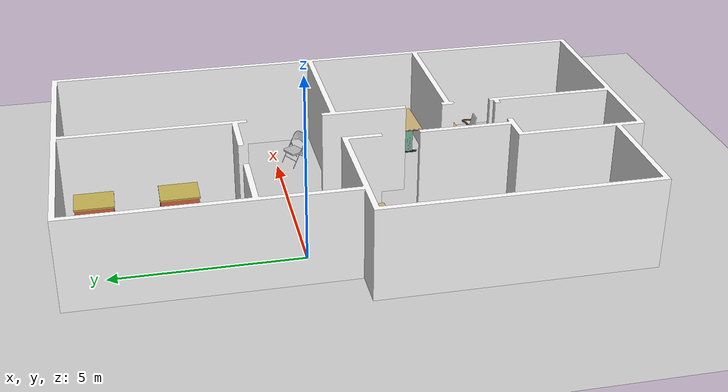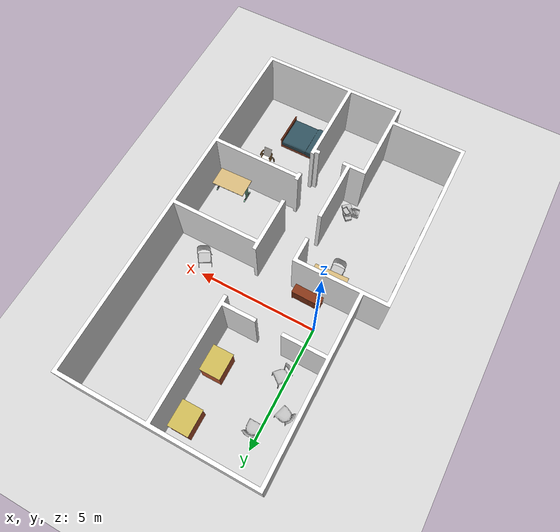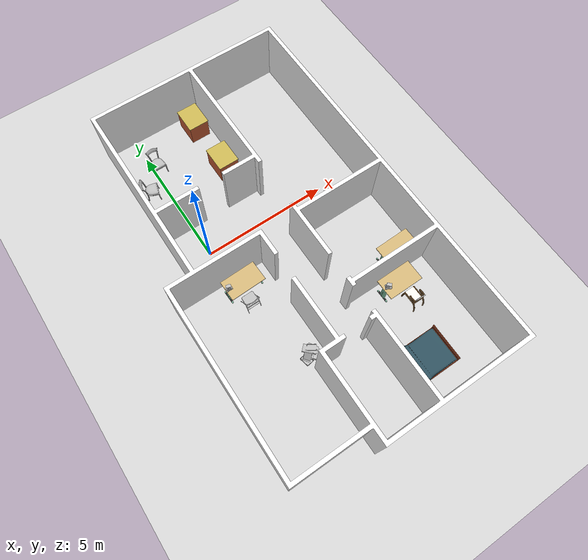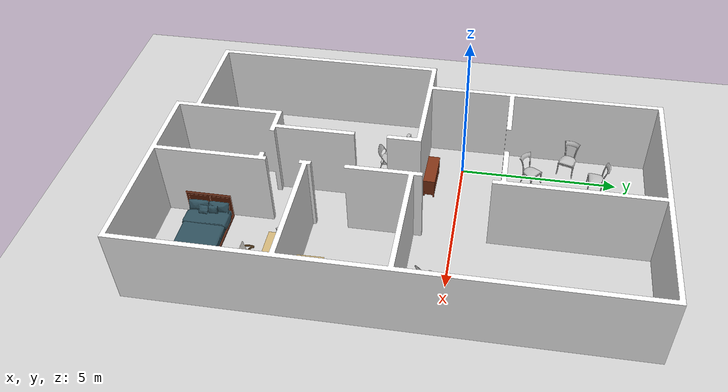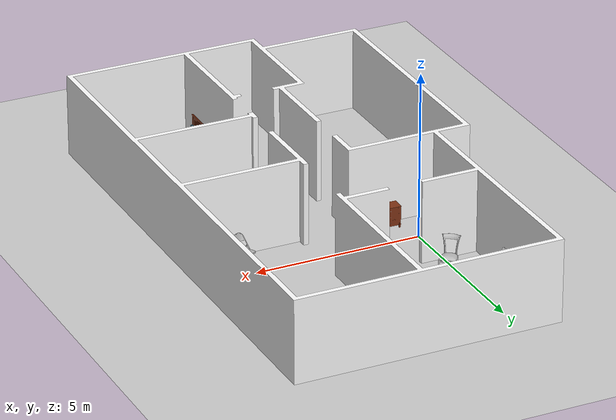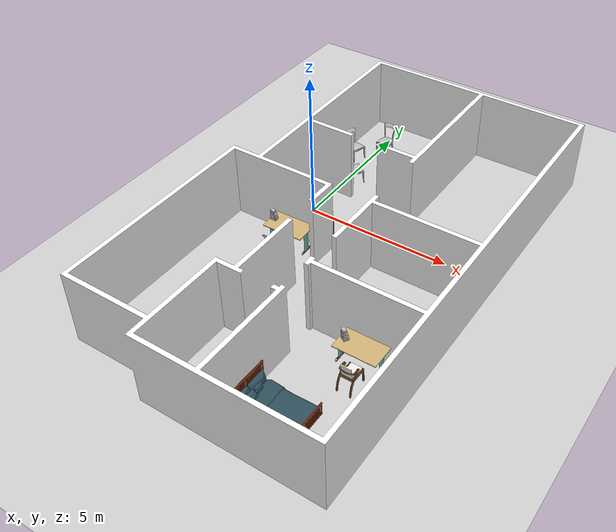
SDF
<sdf version="1.6">
 <world name="default">
  <light name="sun" type="directional">
   <pose>0 0 10 0 -0 0</pose>
   <diffuse>0.8 0.8 0.8 1</diffuse>
   <specular>0.2 0.2 0.2 1</specular>
   <attenuation>
    <range>1000</range>
    <constant>0.9</constant>
    <linear>0.01</linear>
    <quadratic>0.001</quadratic>
   </attenuation>
   <direction>-0.5 0.1 -0.9</direction>
  </light>
  <model name="ground_plane">
   <static>1</static>
   <link name="link">
    <collision name="collision">
     <geometry><plane><normal>0 0 1</normal><size>100 100</size></plane></geometry>
     <surface><friction><ode><mu>100</mu><mu2>50</mu2></ode></friction></surface>
    </collision>
    <visual name="visual">
     <cast_shadows>0</cast_shadows>
     <geometry><plane><normal>0 0 1</normal><size>100 100</size></plane></geometry>
     <material>
      <script><uri>file://media/materials/scripts/gazebo.material</uri><name>Gazebo/Grey</name></script>
     </material>
    </visual>
   </link>
  </model>
  <gravity>0 0 -9.8</gravity>
  <magnetic_field>6e-06 2.3e-05 -4.2e-05</magnetic_field>
  <atmosphere type="adiabatic"/>
  <physics name="default_physics" default="0" type="ode">
   <max_step_size>0.001</max_step_size>
   <real_time_factor>1</real_time_factor>
   <real_time_update_rate>1000</real_time_update_rate>
  </physics>
  <scene><ambient>0.4 0.4 0.4 1</ambient><background>0.7 0.7 0.7 1</background><shadows>1</shadows></scene>
  <spherical_coordinates>
   <surface_model>EARTH_WGS84</surface_model>
   <latitude_deg>0</latitude_deg>
   <longitude_deg>0</longitude_deg>
   <elevation>0</elevation>
   <heading_deg>0</heading_deg>
  </spherical_coordinates>
  <model name="apartment_2">
   <link name="link">
    <collision name="collision">
     <geometry><mesh><uri>model://apartment_2/meshes/walls.dae</uri></mesh></geometry>
    </collision>
    <visual name="visual">
     <geometry><mesh><uri>model://apartment_2/meshes/walls.dae</uri></mesh></geometry>
    </visual>
   </link>
   <static>1</static>
  </model>
  <model name="chair_fancy_1">
   <link name="link">
    <collision name="collision">
     <geometry><mesh><uri>model://chair_fancy_1/meshes/model.dae</uri></mesh></geometry>
    </collision>
    <visual name="visual">
     <geometry><mesh><uri>model://chair_fancy_1/meshes/model.dae</uri></mesh></geometry>
    </visual>
   </link>
   <static>1</static>
   <pose>0.222648 4.36407 0 0 -0 0</pose>
  </model>
  <model name="chair_fancy_1_0">
   <link name="link">
    <collision name="collision">
     <geometry><mesh><uri>model://chair_fancy_1/meshes/model.dae</uri></mesh></geometry>
    </collision>
    <visual name="visual">
     <geometry><mesh><uri>model://chair_fancy_1/meshes/model.dae</uri></mesh></geometry>
    </visual>
   </link>
   <static>1</static>
   <pose>-0.585684 3.42029 0 0 -0 1.27558</pose>
  </model>
  <model name="chair_fancy_1_1">
   <link name="link">
    <collision name="collision">
     <geometry><mesh><uri>model://chair_fancy_1/meshes/model.dae</uri></mesh></geometry>
    </collision>
    <visual name="visual">
     <geometry><mesh><uri>model://chair_fancy_1/meshes/model.dae</uri></mesh></geometry>
    </visual>
   </link>
   <static>1</static>
   <pose>0.180036 2.19131 0 0 -0 2.47671</pose>
  </model>
  <model name="drawer">
   <link name="link">
    <collision name="collision">
     <geometry><mesh><uri>model://drawer/meshes/model.dae</uri></mesh></geometry>
    </collision>
    <visual name="visual"><geometry><mesh><uri>model://drawer/meshes/model.dae</uri></mesh></geometry></visual>
   </link>
   <static>1</static>
   <pose>0.767272 -0.955119 0 0 -0 3.12281</pose>
  </model>
  <model name="chair_foldable">
   <link name="link">
    <collision name="collision">
     <geometry><mesh><uri>model://chair_foldable/meshes/model.dae</uri></mesh></geometry>
    </collision>
    <visual name="visual">
     <geometry><mesh><uri>model://chair_foldable/meshes/model.dae</uri></mesh></geometry>
    </visual>
   </link>
   <static>1</static>
   <pose>5.12868 -0.532836 0 0 0 -2.62752</pose>
  </model>
  <model name="bed_fullsize">
   <link name="link">
    <collision name="collision">
     <geometry><mesh><uri>model://bed_fullsize/meshes/model.dae</uri></mesh></geometry>
    </collision>
    <visual name="visual">
     <geometry><mesh><uri>model://bed_fullsize/meshes/model.dae</uri></mesh></geometry>
    </visual>
   </link>
   <static>1</static>
   <pose>4.12213 -7.59489 0 0 -0 1.56699</pose>
  </model>
  <model name="drawer_kitchen_1">
   <link name="link">
    <collision name="collision">
     <geometry><mesh><uri>model://drawer_kitchen_1/meshes/model.dae</uri></mesh></geometry>
    </collision>
    <visual name="visual">
     <geometry><mesh><uri>model://drawer_kitchen_1/meshes/model.dae</uri></mesh></geometry>
    </visual>
   </link>
   <static>1</static>
   <pose>2.44777 2.97195 0 0 -0 0.00669</pose>
  </model>
  <model name="drawer_kitchen_1_0">
   <link name="link">
    <collision name="collision">
     <geometry><mesh><uri>model://drawer_kitchen_1/meshes/model.dae</uri></mesh></geometry>
    </collision>
    <visual name="visual">
     <geometry><mesh><uri>model://drawer_kitchen_1/meshes/model.dae</uri></mesh></geometry>
    </visual>
   </link>
   <static>1</static>
   <pose>2.39989 5.1656 0 0 -0 0</pose>
  </model>
  <model name="desk_shared">
   <link name="link">
    <collision name="collision">
     <geometry><mesh><uri>model://desk_shared/meshes/model.dae</uri></mesh></geometry>
    </collision>
    <visual name="visual">
     <geometry><mesh><uri>model://desk_shared/meshes/model.dae</uri></mesh></geometry>
    </visual>
   </link>
   <static>1</static>
   <pose>0.348622 -1.83642 0 0 0 -1.54379</pose>
  </model>
  <model name="chair_foldable_0">
   <link name="link">
    <collision name="collision">
     <geometry><mesh><uri>model://chair_foldable/meshes/model.dae</uri></mesh></geometry>
    </collision>
    <visual name="visual">
     <geometry><mesh><uri>model://chair_foldable/meshes/model.dae</uri></mesh></geometry>
    </visual>
   </link>
   <static>1</static>
   <pose>0.232897 -2.48902 0 0 0 -3.12874</pose>
  </model>
  <model name="desk_shared_0">
   <link name="link">
    <collision name="collision">
     <geometry><mesh><uri>model://desk_shared/meshes/model.dae</uri></mesh></geometry>
    </collision>
    <visual name="visual">
     <geometry><mesh><uri>model://desk_shared/meshes/model.dae</uri></mesh></geometry>
    </visual>
   </link>
   <static>1</static>
   <pose>5.78134 -3.89214 0 0 0 -1.54703</pose>
  </model>
  <model name="desk_shared_1">
   <link name="link">
    <collision name="collision">
     <geometry><mesh><uri>model://desk_shared/meshes/model.dae</uri></mesh></geometry>
    </collision>
    <visual name="visual">
     <geometry><mesh><uri>model://desk_shared/meshes/model.dae</uri></mesh></geometry>
    </visual>
   </link>
   <static>1</static>
   <pose>5.03041 -4.94175 0 0 0 -1.56433</pose>
  </model>
  <model name="chair_modern_1">
   <link name="link">
    <collision name="collision">
     <geometry><mesh><uri>model://chair_modern_1/meshes/model.dae</uri></mesh></geometry>
    </collision>
    <visual name="visual">
     <geometry><mesh><uri>model://chair_modern_1/meshes/model.dae</uri></mesh></geometry>
    </visual>
   </link>
   <static>1</static>
   <pose>5.17613 -5.70724 0 0 -0 0</pose>
  </model>
  <model name="books">
   <link name="link">
    <collision name="collision">
     <geometry><mesh><uri>model://books/meshes/model.dae</uri></mesh></geometry>
    </collision>
    <visual name="visual"><geometry><mesh><uri>model://books/meshes/model.dae</uri></mesh></geometry></visual>
   </link>
   <static>1</static>
   <pose>-0.229549 -1.82149 0.76455 0 -0 0</pose>
  </model>
  <model name="books_0">
   <link name="link">
    <collision name="collision">
     <geometry><mesh><uri>model://books/meshes/model.dae</uri></mesh></geometry>
    </collision>
    <visual name="visual"><geometry><mesh><uri>model://books/meshes/model.dae</uri></mesh></geometry></visual>
   </link>
   <static>1</static>
   <pose>4.50503 -4.93486 0.771339 0 0 -0.550945</pose>
  </model>
  <model name="boxes">
   <link name="link">
    <collision name="collision">
     <geometry><mesh><uri>model://boxes/meshes/model.dae</uri></mesh></geometry>
    </collision>
    <visual name="visual"><geometry><mesh><uri>model://boxes/meshes/model.dae</uri></mesh></geometry></visual>
   </link>
   <static>1</static>
   <pose>0.98595 -5.15744 0 0 -0 0</pose>
  </model>
 </world>
</sdf>
